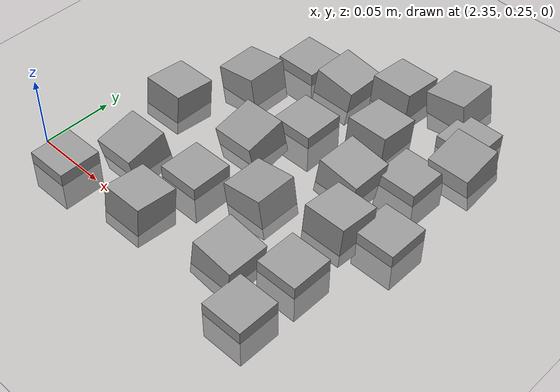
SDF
<sdf version="1.7">
 <world name="default">
  <model name="ground_plane">
   <static>1</static>
   <link name="link">
    <collision name="collision">
     <geometry><plane><normal>0 0 1</normal><size>100 100</size></plane></geometry>
     <surface><friction><ode><mu>100</mu><mu2>50</mu2></ode></friction></surface>
    </collision>
    <visual name="visual">
     <cast_shadows>0</cast_shadows>
     <geometry><plane><normal>0 0 1</normal><size>100 100</size></plane></geometry>
     <material>
      <script><uri>file://media/materials/scripts/gazebo.material</uri><name>Gazebo/Grey</name></script>
     </material>
    </visual>
   </link>
  </model>
  <model name="stone_road_7">
   <link name="link_0">
    <inertial>
     <mass>1</mass>
     <inertia>
      <ixx>0.166667</ixx>
      <ixy>0</ixy>
      <ixz>0</ixz>
      <iyy>0.166667</iyy>
      <iyz>0</iyz>
      <izz>0.166667</izz>
     </inertia>
    </inertial>
    <pose>-0.171827 0.03973 0.003778 0.2 -0 0</pose>
    <kinematic>1</kinematic>
    <visual name="visual">
     <geometry><box><size>0.03 0.03 0.03</size></box></geometry>
     <material>
      <lighting>1</lighting>
      <script><uri>file://media/materials/scripts/gazebo.material</uri><name>Gazebo/Grey</name></script>
      <shader type="pixel"><normal_map>__default__</normal_map></shader>
      <ambient>0.3 0.3 0.3 1</ambient>
      <diffuse>0.7 0.7 0.7 1</diffuse>
      <specular>0.01 0.01 0.01 1</specular>
      <emissive>0 0 0 1</emissive>
     </material>
    </visual>
    <collision name="collision">
     <geometry><box><size>0.03 0.03 0.03</size></box></geometry>
     <surface>
      <friction>
       <ode><mu>1</mu><mu2>1</mu2><fdir1>0 0 0</fdir1><slip1>0</slip1><slip2>0</slip2></ode>
       <torsional>
        <coefficient>1</coefficient>
        <patch_radius>0</patch_radius>
        <surface_radius>0</surface_radius>
        <use_patch_radius>1</use_patch_radius>
        <ode><slip>0</slip></ode>
       </torsional>
      </friction>
      <bounce><restitution_coefficient>0</restitution_coefficient><threshold>1e+06</threshold></bounce>
      <contact>
       <collide_without_contact>0</collide_without_contact>
       <collide_without_contact_bitmask>1</collide_without_contact_bitmask>
       <collide_bitmask>1</collide_bitmask>
       <ode>
        <soft_cfm>0</soft_cfm>
        <soft_erp>0.2</soft_erp>
        <kp>1e+13</kp>
        <kd>1</kd>
        <max_vel>0.01</max_vel>
        <min_depth>0</min_depth>
       </ode>
       <bullet>
        <split_impulse>1</split_impulse>
        <split_impulse_penetration_threshold>-0.01</split_impulse_penetration_threshold>
        <soft_cfm>0</soft_cfm>
        <soft_erp>0.2</soft_erp>
        <kp>1e+13</kp>
        <kd>1</kd>
       </bullet>
      </contact>
     </surface>
    </collision>
   </link>
   <link name="link_0_clone_10">
    <inertial>
     <mass>1</mass>
     <inertia>
      <ixx>0.166667</ixx>
      <ixy>0</ixy>
      <ixz>0</ixz>
      <iyy>0.166667</iyy>
      <iyz>0</iyz>
      <izz>0.166667</izz>
     </inertia>
    </inertial>
    <pose>-0.01295 0.17123 0.003778 0.2 -0 0</pose>
    <kinematic>1</kinematic>
    <visual name="visual">
     <geometry><box><size>0.03 0.03 0.03</size></box></geometry>
     <material>
      <lighting>1</lighting>
      <script><uri>file://media/materials/scripts/gazebo.material</uri><name>Gazebo/Grey</name></script>
      <shader type="pixel"><normal_map>__default__</normal_map></shader>
      <ambient>0.3 0.3 0.3 1</ambient>
      <diffuse>0.7 0.7 0.7 1</diffuse>
      <specular>0.01 0.01 0.01 1</specular>
      <emissive>0 0 0 1</emissive>
     </material>
    </visual>
    <collision name="collision">
     <geometry><box><size>0.03 0.03 0.03</size></box></geometry>
     <surface>
      <friction>
       <ode><mu>1</mu><mu2>1</mu2><fdir1>0 0 0</fdir1><slip1>0</slip1><slip2>0</slip2></ode>
       <torsional>
        <coefficient>1</coefficient>
        <patch_radius>0</patch_radius>
        <surface_radius>0</surface_radius>
        <use_patch_radius>1</use_patch_radius>
        <ode><slip>0</slip></ode>
       </torsional>
      </friction>
      <bounce><restitution_coefficient>0</restitution_coefficient><threshold>1e+06</threshold></bounce>
      <contact>
       <collide_without_contact>0</collide_without_contact>
       <collide_without_contact_bitmask>1</collide_without_contact_bitmask>
       <collide_bitmask>1</collide_bitmask>
       <ode>
        <soft_cfm>0</soft_cfm>
        <soft_erp>0.2</soft_erp>
        <kp>1e+13</kp>
        <kd>1</kd>
        <max_vel>0.01</max_vel>
        <min_depth>0</min_depth>
       </ode>
       <bullet>
        <split_impulse>1</split_impulse>
        <split_impulse_penetration_threshold>-0.01</split_impulse_penetration_threshold>
        <soft_cfm>0</soft_cfm>
        <soft_erp>0.2</soft_erp>
        <kp>1e+13</kp>
        <kd>1</kd>
       </bullet>
      </contact>
     </surface>
    </collision>
   </link>
   <link name="link_0_clone_2">
    <inertial>
     <mass>1</mass>
     <inertia>
      <ixx>0.166667</ixx>
      <ixy>0</ixy>
      <ixz>0</ixz>
      <iyy>0.166667</iyy>
      <iyz>0</iyz>
      <izz>0.166667</izz>
     </inertia>
    </inertial>
    <pose>-0.065685 0.018139 0.003778 0 0.15 0</pose>
    <kinematic>1</kinematic>
    <visual name="visual">
     <geometry><box><size>0.03 0.03 0.03</size></box></geometry>
     <material>
      <lighting>1</lighting>
      <script><uri>file://media/materials/scripts/gazebo.material</uri><name>Gazebo/Grey</name></script>
      <shader type="pixel"><normal_map>__default__</normal_map></shader>
      <ambient>0.3 0.3 0.3 1</ambient>
      <diffuse>0.7 0.7 0.7 1</diffuse>
      <specular>0.01 0.01 0.01 1</specular>
      <emissive>0 0 0 1</emissive>
     </material>
    </visual>
    <collision name="collision">
     <geometry><box><size>0.03 0.03 0.03</size></box></geometry>
     <surface>
      <friction>
       <ode><mu>1</mu><mu2>1</mu2><fdir1>0 0 0</fdir1><slip1>0</slip1><slip2>0</slip2></ode>
       <torsional>
        <coefficient>1</coefficient>
        <patch_radius>0</patch_radius>
        <surface_radius>0</surface_radius>
        <use_patch_radius>1</use_patch_radius>
        <ode><slip>0</slip></ode>
       </torsional>
      </friction>
      <bounce><restitution_coefficient>0</restitution_coefficient><threshold>1e+06</threshold></bounce>
      <contact>
       <collide_without_contact>0</collide_without_contact>
       <collide_without_contact_bitmask>1</collide_without_contact_bitmask>
       <collide_bitmask>1</collide_bitmask>
       <ode>
        <soft_cfm>0</soft_cfm>
        <soft_erp>0.2</soft_erp>
        <kp>1e+13</kp>
        <kd>1</kd>
        <max_vel>0.01</max_vel>
        <min_depth>0</min_depth>
       </ode>
       <bullet>
        <split_impulse>1</split_impulse>
        <split_impulse_penetration_threshold>-0.01</split_impulse_penetration_threshold>
        <soft_cfm>0</soft_cfm>
        <soft_erp>0.2</soft_erp>
        <kp>1e+13</kp>
        <kd>1</kd>
       </bullet>
      </contact>
     </surface>
    </collision>
   </link>
   <link name="link_0_clone_2_clone_2_clone_1">
    <inertial>
     <mass>1</mass>
     <inertia>
      <ixx>0.166667</ixx>
      <ixy>0</ixy>
      <ixz>0</ixz>
      <iyy>0.166667</iyy>
      <iyz>0</iyz>
      <izz>0.166667</izz>
     </inertia>
    </inertial>
    <pose>-0.085624 0.065625 0.003778 0 -0.15 0</pose>
    <kinematic>1</kinematic>
    <visual name="visual">
     <geometry><box><size>0.03 0.03 0.03</size></box></geometry>
     <material>
      <lighting>1</lighting>
      <script><uri>file://media/materials/scripts/gazebo.material</uri><name>Gazebo/Grey</name></script>
      <shader type="pixel"><normal_map>__default__</normal_map></shader>
      <ambient>0.3 0.3 0.3 1</ambient>
      <diffuse>0.7 0.7 0.7 1</diffuse>
      <specular>0.01 0.01 0.01 1</specular>
      <emissive>0 0 0 1</emissive>
     </material>
    </visual>
    <collision name="collision">
     <geometry><box><size>0.03 0.03 0.03</size></box></geometry>
     <surface>
      <friction>
       <ode><mu>1</mu><mu2>1</mu2><fdir1>0 0 0</fdir1><slip1>0</slip1><slip2>0</slip2></ode>
       <torsional>
        <coefficient>1</coefficient>
        <patch_radius>0</patch_radius>
        <surface_radius>0</surface_radius>
        <use_patch_radius>1</use_patch_radius>
        <ode><slip>0</slip></ode>
       </torsional>
      </friction>
      <bounce><restitution_coefficient>0</restitution_coefficient><threshold>1e+06</threshold></bounce>
      <contact>
       <collide_without_contact>0</collide_without_contact>
       <collide_without_contact_bitmask>1</collide_without_contact_bitmask>
       <collide_bitmask>1</collide_bitmask>
       <ode>
        <soft_cfm>0</soft_cfm>
        <soft_erp>0.2</soft_erp>
        <kp>1e+13</kp>
        <kd>1</kd>
        <max_vel>0.01</max_vel>
        <min_depth>0</min_depth>
       </ode>
       <bullet>
        <split_impulse>1</split_impulse>
        <split_impulse_penetration_threshold>-0.01</split_impulse_penetration_threshold>
        <soft_cfm>0</soft_cfm>
        <soft_erp>0.2</soft_erp>
        <kp>1e+13</kp>
        <kd>1</kd>
       </bullet>
      </contact>
     </surface>
    </collision>
   </link>
   <link name="link_0_clone_2_clone_2_clone_11">
    <inertial>
     <mass>1</mass>
     <inertia>
      <ixx>0.166667</ixx>
      <ixy>0</ixy>
      <ixz>0</ixz>
      <iyy>0.166667</iyy>
      <iyz>0</iyz>
      <izz>0.166667</izz>
     </inertia>
    </inertial>
    <pose>-0.050382 0.216558 0.003778 0 -0.15 0</pose>
    <kinematic>1</kinematic>
    <visual name="visual">
     <geometry><box><size>0.03 0.03 0.03</size></box></geometry>
     <material>
      <lighting>1</lighting>
      <script><uri>file://media/materials/scripts/gazebo.material</uri><name>Gazebo/Grey</name></script>
      <shader type="pixel"><normal_map>__default__</normal_map></shader>
      <ambient>0.3 0.3 0.3 1</ambient>
      <diffuse>0.7 0.7 0.7 1</diffuse>
      <specular>0.01 0.01 0.01 1</specular>
      <emissive>0 0 0 1</emissive>
     </material>
    </visual>
    <collision name="collision">
     <geometry><box><size>0.03 0.03 0.03</size></box></geometry>
     <surface>
      <friction>
       <ode><mu>1</mu><mu2>1</mu2><fdir1>0 0 0</fdir1><slip1>0</slip1><slip2>0</slip2></ode>
       <torsional>
        <coefficient>1</coefficient>
        <patch_radius>0</patch_radius>
        <surface_radius>0</surface_radius>
        <use_patch_radius>1</use_patch_radius>
        <ode><slip>0</slip></ode>
       </torsional>
      </friction>
      <bounce><restitution_coefficient>0</restitution_coefficient><threshold>1e+06</threshold></bounce>
      <contact>
       <collide_without_contact>0</collide_without_contact>
       <collide_without_contact_bitmask>1</collide_without_contact_bitmask>
       <collide_bitmask>1</collide_bitmask>
       <ode>
        <soft_cfm>0</soft_cfm>
        <soft_erp>0.2</soft_erp>
        <kp>1e+13</kp>
        <kd>1</kd>
        <max_vel>0.01</max_vel>
        <min_depth>0</min_depth>
       </ode>
       <bullet>
        <split_impulse>1</split_impulse>
        <split_impulse_penetration_threshold>-0.01</split_impulse_penetration_threshold>
        <soft_cfm>0</soft_cfm>
        <soft_erp>0.2</soft_erp>
        <kp>1e+13</kp>
        <kd>1</kd>
       </bullet>
      </contact>
     </surface>
    </collision>
   </link>
   <link name="link_0_clone_2_clone_2_clone_13_clone_clone_13">
    <inertial>
     <mass>1</mass>
     <inertia>
      <ixx>0.166667</ixx>
      <ixy>0</ixy>
      <ixz>0</ixz>
      <iyy>0.166667</iyy>
      <iyz>0</iyz>
      <izz>0.166667</izz>
     </inertia>
    </inertial>
    <pose>-0.069861 0.157394 0.003778 -0.1 0 0</pose>
    <kinematic>1</kinematic>
    <visual name="visual">
     <geometry><box><size>0.03 0.03 0.03</size></box></geometry>
     <material>
      <lighting>1</lighting>
      <script><uri>file://media/materials/scripts/gazebo.material</uri><name>Gazebo/Grey</name></script>
      <shader type="pixel"><normal_map>__default__</normal_map></shader>
      <ambient>0.3 0.3 0.3 1</ambient>
      <diffuse>0.7 0.7 0.7 1</diffuse>
      <specular>0.01 0.01 0.01 1</specular>
      <emissive>0 0 0 1</emissive>
     </material>
    </visual>
    <collision name="collision">
     <geometry><box><size>0.03 0.03 0.03</size></box></geometry>
     <surface>
      <friction>
       <ode><mu>1</mu><mu2>1</mu2><fdir1>0 0 0</fdir1><slip1>0</slip1><slip2>0</slip2></ode>
       <torsional>
        <coefficient>1</coefficient>
        <patch_radius>0</patch_radius>
        <surface_radius>0</surface_radius>
        <use_patch_radius>1</use_patch_radius>
        <ode><slip>0</slip></ode>
       </torsional>
      </friction>
      <bounce><restitution_coefficient>0</restitution_coefficient><threshold>1e+06</threshold></bounce>
      <contact>
       <collide_without_contact>0</collide_without_contact>
       <collide_without_contact_bitmask>1</collide_without_contact_bitmask>
       <collide_bitmask>1</collide_bitmask>
       <ode>
        <soft_cfm>0</soft_cfm>
        <soft_erp>0.2</soft_erp>
        <kp>1e+13</kp>
        <kd>1</kd>
        <max_vel>0.01</max_vel>
        <min_depth>0</min_depth>
       </ode>
       <bullet>
        <split_impulse>1</split_impulse>
        <split_impulse_penetration_threshold>-0.01</split_impulse_penetration_threshold>
        <soft_cfm>0</soft_cfm>
        <soft_erp>0.2</soft_erp>
        <kp>1e+13</kp>
        <kd>1</kd>
       </bullet>
      </contact>
     </surface>
    </collision>
   </link>
   <link name="link_0_clone_2_clone_2_clone_13_clone_clone_14">
    <inertial>
     <mass>1</mass>
     <inertia>
      <ixx>0.166667</ixx>
      <ixy>0</ixy>
      <ixz>0</ixz>
      <iyy>0.166667</iyy>
      <iyz>0</iyz>
      <izz>0.166667</izz>
     </inertia>
    </inertial>
    <pose>-0.190578 0.093923 0.003778 -0.1 0 0</pose>
    <kinematic>1</kinematic>
    <visual name="visual">
     <geometry><box><size>0.03 0.03 0.03</size></box></geometry>
     <material>
      <lighting>1</lighting>
      <script><uri>file://media/materials/scripts/gazebo.material</uri><name>Gazebo/Grey</name></script>
      <shader type="pixel"><normal_map>__default__</normal_map></shader>
      <ambient>0.3 0.3 0.3 1</ambient>
      <diffuse>0.7 0.7 0.7 1</diffuse>
      <specular>0.01 0.01 0.01 1</specular>
      <emissive>0 0 0 1</emissive>
     </material>
    </visual>
    <collision name="collision">
     <geometry><box><size>0.03 0.03 0.03</size></box></geometry>
     <surface>
      <friction>
       <ode><mu>1</mu><mu2>1</mu2><fdir1>0 0 0</fdir1><slip1>0</slip1><slip2>0</slip2></ode>
       <torsional>
        <coefficient>1</coefficient>
        <patch_radius>0</patch_radius>
        <surface_radius>0</surface_radius>
        <use_patch_radius>1</use_patch_radius>
        <ode><slip>0</slip></ode>
       </torsional>
      </friction>
      <bounce><restitution_coefficient>0</restitution_coefficient><threshold>1e+06</threshold></bounce>
      <contact>
       <collide_without_contact>0</collide_without_contact>
       <collide_without_contact_bitmask>1</collide_without_contact_bitmask>
       <collide_bitmask>1</collide_bitmask>
       <ode>
        <soft_cfm>0</soft_cfm>
        <soft_erp>0.2</soft_erp>
        <kp>1e+13</kp>
        <kd>1</kd>
        <max_vel>0.01</max_vel>
        <min_depth>0</min_depth>
       </ode>
       <bullet>
        <split_impulse>1</split_impulse>
        <split_impulse_penetration_threshold>-0.01</split_impulse_penetration_threshold>
        <soft_cfm>0</soft_cfm>
        <soft_erp>0.2</soft_erp>
        <kp>1e+13</kp>
        <kd>1</kd>
       </bullet>
      </contact>
     </surface>
    </collision>
   </link>
   <link name="link_0_clone_2_clone_2_clone_13_clone_clone_15">
    <inertial>
     <mass>1</mass>
     <inertia>
      <ixx>0.166667</ixx>
      <ixy>0</ixy>
      <ixz>0</ixz>
      <iyy>0.166667</iyy>
      <iyz>0</iyz>
      <izz>0.166667</izz>
     </inertia>
    </inertial>
    <pose>-0.084893 0.19984 0.003778 -0.1 0 0</pose>
    <kinematic>1</kinematic>
    <visual name="visual">
     <geometry><box><size>0.03 0.03 0.03</size></box></geometry>
     <material>
      <lighting>1</lighting>
      <script><uri>file://media/materials/scripts/gazebo.material</uri><name>Gazebo/Grey</name></script>
      <shader type="pixel"><normal_map>__default__</normal_map></shader>
      <ambient>0.3 0.3 0.3 1</ambient>
      <diffuse>0.7 0.7 0.7 1</diffuse>
      <specular>0.01 0.01 0.01 1</specular>
      <emissive>0 0 0 1</emissive>
     </material>
    </visual>
    <collision name="collision">
     <geometry><box><size>0.03 0.03 0.03</size></box></geometry>
     <surface>
      <friction>
       <ode><mu>1</mu><mu2>1</mu2><fdir1>0 0 0</fdir1><slip1>0</slip1><slip2>0</slip2></ode>
       <torsional>
        <coefficient>1</coefficient>
        <patch_radius>0</patch_radius>
        <surface_radius>0</surface_radius>
        <use_patch_radius>1</use_patch_radius>
        <ode><slip>0</slip></ode>
       </torsional>
      </friction>
      <bounce><restitution_coefficient>0</restitution_coefficient><threshold>1e+06</threshold></bounce>
      <contact>
       <collide_without_contact>0</collide_without_contact>
       <collide_without_contact_bitmask>1</collide_without_contact_bitmask>
       <collide_bitmask>1</collide_bitmask>
       <ode>
        <soft_cfm>0</soft_cfm>
        <soft_erp>0.2</soft_erp>
        <kp>1e+13</kp>
        <kd>1</kd>
        <max_vel>0.01</max_vel>
        <min_depth>0</min_depth>
       </ode>
       <bullet>
        <split_impulse>1</split_impulse>
        <split_impulse_penetration_threshold>-0.01</split_impulse_penetration_threshold>
        <soft_cfm>0</soft_cfm>
        <soft_erp>0.2</soft_erp>
        <kp>1e+13</kp>
        <kd>1</kd>
       </bullet>
      </contact>
     </surface>
    </collision>
   </link>
   <link name="link_0_clone_2_clone_2_clone_13_clone_clone_16_clone_0">
    <inertial>
     <mass>1</mass>
     <inertia>
      <ixx>0.166667</ixx>
      <ixy>0</ixy>
      <ixz>0</ixz>
      <iyy>0.166667</iyy>
      <iyz>0</iyz>
      <izz>0.166667</izz>
     </inertia>
    </inertial>
    <pose>-0.010782 0.09679 -0.006222 0 -0 0</pose>
    <kinematic>1</kinematic>
    <visual name="visual">
     <geometry><box><size>0.03 0.03 0.03</size></box></geometry>
     <material>
      <lighting>1</lighting>
      <script><uri>file://media/materials/scripts/gazebo.material</uri><name>Gazebo/Grey</name></script>
      <shader type="pixel"><normal_map>__default__</normal_map></shader>
      <ambient>0.3 0.3 0.3 1</ambient>
      <diffuse>0.7 0.7 0.7 1</diffuse>
      <specular>0.01 0.01 0.01 1</specular>
      <emissive>0 0 0 1</emissive>
     </material>
    </visual>
    <collision name="collision">
     <geometry><box><size>0.03 0.03 0.03</size></box></geometry>
     <surface>
      <friction>
       <ode><mu>1</mu><mu2>1</mu2><fdir1>0 0 0</fdir1><slip1>0</slip1><slip2>0</slip2></ode>
       <torsional>
        <coefficient>1</coefficient>
        <patch_radius>0</patch_radius>
        <surface_radius>0</surface_radius>
        <use_patch_radius>1</use_patch_radius>
        <ode><slip>0</slip></ode>
       </torsional>
      </friction>
      <bounce><restitution_coefficient>0</restitution_coefficient><threshold>1e+06</threshold></bounce>
      <contact>
       <collide_without_contact>0</collide_without_contact>
       <collide_without_contact_bitmask>1</collide_without_contact_bitmask>
       <collide_bitmask>1</collide_bitmask>
       <ode>
        <soft_cfm>0</soft_cfm>
        <soft_erp>0.2</soft_erp>
        <kp>1e+13</kp>
        <kd>1</kd>
        <max_vel>0.01</max_vel>
        <min_depth>0</min_depth>
       </ode>
       <bullet>
        <split_impulse>1</split_impulse>
        <split_impulse_penetration_threshold>-0.01</split_impulse_penetration_threshold>
        <soft_cfm>0</soft_cfm>
        <soft_erp>0.2</soft_erp>
        <kp>1e+13</kp>
        <kd>1</kd>
       </bullet>
      </contact>
     </surface>
    </collision>
   </link>
   <link name="link_0_clone_2_clone_2_clone_13_clone_clone_16_clone_2">
    <inertial>
     <mass>1</mass>
     <inertia>
      <ixx>0.166667</ixx>
      <ixy>0</ixy>
      <ixz>0</ixz>
      <iyy>0.166667</iyy>
      <iyz>0</iyz>
      <izz>0.166667</izz>
     </inertia>
    </inertial>
    <pose>-0.035128 0.040728 -0.006222 0 -0 0</pose>
    <kinematic>1</kinematic>
    <visual name="visual">
     <geometry><box><size>0.03 0.03 0.03</size></box></geometry>
     <material>
      <lighting>1</lighting>
      <script><uri>file://media/materials/scripts/gazebo.material</uri><name>Gazebo/Grey</name></script>
      <shader type="pixel"><normal_map>__default__</normal_map></shader>
      <ambient>0.3 0.3 0.3 1</ambient>
      <diffuse>0.7 0.7 0.7 1</diffuse>
      <specular>0.01 0.01 0.01 1</specular>
      <emissive>0 0 0 1</emissive>
     </material>
    </visual>
    <collision name="collision">
     <geometry><box><size>0.03 0.03 0.03</size></box></geometry>
     <surface>
      <friction>
       <ode><mu>1</mu><mu2>1</mu2><fdir1>0 0 0</fdir1><slip1>0</slip1><slip2>0</slip2></ode>
       <torsional>
        <coefficient>1</coefficient>
        <patch_radius>0</patch_radius>
        <surface_radius>0</surface_radius>
        <use_patch_radius>1</use_patch_radius>
        <ode><slip>0</slip></ode>
       </torsional>
      </friction>
      <bounce><restitution_coefficient>0</restitution_coefficient><threshold>1e+06</threshold></bounce>
      <contact>
       <collide_without_contact>0</collide_without_contact>
       <collide_without_contact_bitmask>1</collide_without_contact_bitmask>
       <collide_bitmask>1</collide_bitmask>
       <ode>
        <soft_cfm>0</soft_cfm>
        <soft_erp>0.2</soft_erp>
        <kp>1e+13</kp>
        <kd>1</kd>
        <max_vel>0.01</max_vel>
        <min_depth>0</min_depth>
       </ode>
       <bullet>
        <split_impulse>1</split_impulse>
        <split_impulse_penetration_threshold>-0.01</split_impulse_penetration_threshold>
        <soft_cfm>0</soft_cfm>
        <soft_erp>0.2</soft_erp>
        <kp>1e+13</kp>
        <kd>1</kd>
       </bullet>
      </contact>
     </surface>
    </collision>
   </link>
   <link name="link_0_clone_2_clone_2_clone_13_clone_clone_16_clone_21">
    <inertial>
     <mass>1</mass>
     <inertia>
      <ixx>0.166667</ixx>
      <ixy>0</ixy>
      <ixz>0</ixz>
      <iyy>0.166667</iyy>
      <iyz>0</iyz>
      <izz>0.166667</izz>
     </inertia>
    </inertial>
    <pose>-0.032398 0.142589 -0.006222 0 -0 0</pose>
    <kinematic>1</kinematic>
    <visual name="visual">
     <geometry><box><size>0.03 0.03 0.03</size></box></geometry>
     <material>
      <lighting>1</lighting>
      <script><uri>file://media/materials/scripts/gazebo.material</uri><name>Gazebo/Grey</name></script>
      <shader type="pixel"><normal_map>__default__</normal_map></shader>
      <ambient>0.3 0.3 0.3 1</ambient>
      <diffuse>0.7 0.7 0.7 1</diffuse>
      <specular>0.01 0.01 0.01 1</specular>
      <emissive>0 0 0 1</emissive>
     </material>
    </visual>
    <collision name="collision">
     <geometry><box><size>0.03 0.03 0.03</size></box></geometry>
     <surface>
      <friction>
       <ode><mu>1</mu><mu2>1</mu2><fdir1>0 0 0</fdir1><slip1>0</slip1><slip2>0</slip2></ode>
       <torsional>
        <coefficient>1</coefficient>
        <patch_radius>0</patch_radius>
        <surface_radius>0</surface_radius>
        <use_patch_radius>1</use_patch_radius>
        <ode><slip>0</slip></ode>
       </torsional>
      </friction>
      <bounce><restitution_coefficient>0</restitution_coefficient><threshold>1e+06</threshold></bounce>
      <contact>
       <collide_without_contact>0</collide_without_contact>
       <collide_without_contact_bitmask>1</collide_without_contact_bitmask>
       <collide_bitmask>1</collide_bitmask>
       <ode>
        <soft_cfm>0</soft_cfm>
        <soft_erp>0.2</soft_erp>
        <kp>1e+13</kp>
        <kd>1</kd>
        <max_vel>0.01</max_vel>
        <min_depth>0</min_depth>
       </ode>
       <bullet>
        <split_impulse>1</split_impulse>
        <split_impulse_penetration_threshold>-0.01</split_impulse_penetration_threshold>
        <soft_cfm>0</soft_cfm>
        <soft_erp>0.2</soft_erp>
        <kp>1e+13</kp>
        <kd>1</kd>
       </bullet>
      </contact>
     </surface>
    </collision>
   </link>
   <link name="link_0_clone_2_clone_2_clone_13_clone_clone_16_clone_22">
    <inertial>
     <mass>1</mass>
     <inertia>
      <ixx>0.166667</ixx>
      <ixy>0</ixy>
      <ixz>0</ixz>
      <iyy>0.166667</iyy>
      <iyz>0</iyz>
      <izz>0.166667</izz>
     </inertia>
    </inertial>
    <pose>-0.025872 0.194724 -0.006222 0 -0 0</pose>
    <kinematic>1</kinematic>
    <visual name="visual">
     <geometry><box><size>0.03 0.03 0.03</size></box></geometry>
     <material>
      <lighting>1</lighting>
      <script><uri>file://media/materials/scripts/gazebo.material</uri><name>Gazebo/Grey</name></script>
      <shader type="pixel"><normal_map>__default__</normal_map></shader>
      <ambient>0.3 0.3 0.3 1</ambient>
      <diffuse>0.7 0.7 0.7 1</diffuse>
      <specular>0.01 0.01 0.01 1</specular>
      <emissive>0 0 0 1</emissive>
     </material>
    </visual>
    <collision name="collision">
     <geometry><box><size>0.03 0.03 0.03</size></box></geometry>
     <surface>
      <friction>
       <ode><mu>1</mu><mu2>1</mu2><fdir1>0 0 0</fdir1><slip1>0</slip1><slip2>0</slip2></ode>
       <torsional>
        <coefficient>1</coefficient>
        <patch_radius>0</patch_radius>
        <surface_radius>0</surface_radius>
        <use_patch_radius>1</use_patch_radius>
        <ode><slip>0</slip></ode>
       </torsional>
      </friction>
      <bounce><restitution_coefficient>0</restitution_coefficient><threshold>1e+06</threshold></bounce>
      <contact>
       <collide_without_contact>0</collide_without_contact>
       <collide_without_contact_bitmask>1</collide_without_contact_bitmask>
       <collide_bitmask>1</collide_bitmask>
       <ode>
        <soft_cfm>0</soft_cfm>
        <soft_erp>0.2</soft_erp>
        <kp>1e+13</kp>
        <kd>1</kd>
        <max_vel>0.01</max_vel>
        <min_depth>0</min_depth>
       </ode>
       <bullet>
        <split_impulse>1</split_impulse>
        <split_impulse_penetration_threshold>-0.01</split_impulse_penetration_threshold>
        <soft_cfm>0</soft_cfm>
        <soft_erp>0.2</soft_erp>
        <kp>1e+13</kp>
        <kd>1</kd>
       </bullet>
      </contact>
     </surface>
    </collision>
   </link>
   <link name="link_0_clone_2_clone_2_clone_13_clone_clone_16_clone_25">
    <inertial>
     <mass>1</mass>
     <inertia>
      <ixx>0.166667</ixx>
      <ixy>0</ixy>
      <ixz>0</ixz>
      <iyy>0.166667</iyy>
      <iyz>0</iyz>
      <izz>0.166667</izz>
     </inertia>
    </inertial>
    <pose>-0.15326 0.182661 -0.006222 0 -0 0</pose>
    <kinematic>1</kinematic>
    <visual name="visual">
     <geometry><box><size>0.03 0.03 0.03</size></box></geometry>
     <material>
      <lighting>1</lighting>
      <script><uri>file://media/materials/scripts/gazebo.material</uri><name>Gazebo/Grey</name></script>
      <shader type="pixel"><normal_map>__default__</normal_map></shader>
      <ambient>0.3 0.3 0.3 1</ambient>
      <diffuse>0.7 0.7 0.7 1</diffuse>
      <specular>0.01 0.01 0.01 1</specular>
      <emissive>0 0 0 1</emissive>
     </material>
    </visual>
    <collision name="collision">
     <geometry><box><size>0.03 0.03 0.03</size></box></geometry>
     <surface>
      <friction>
       <ode><mu>1</mu><mu2>1</mu2><fdir1>0 0 0</fdir1><slip1>0</slip1><slip2>0</slip2></ode>
       <torsional>
        <coefficient>1</coefficient>
        <patch_radius>0</patch_radius>
        <surface_radius>0</surface_radius>
        <use_patch_radius>1</use_patch_radius>
        <ode><slip>0</slip></ode>
       </torsional>
      </friction>
      <bounce><restitution_coefficient>0</restitution_coefficient><threshold>1e+06</threshold></bounce>
      <contact>
       <collide_without_contact>0</collide_without_contact>
       <collide_without_contact_bitmask>1</collide_without_contact_bitmask>
       <collide_bitmask>1</collide_bitmask>
       <ode>
        <soft_cfm>0</soft_cfm>
        <soft_erp>0.2</soft_erp>
        <kp>1e+13</kp>
        <kd>1</kd>
        <max_vel>0.01</max_vel>
        <min_depth>0</min_depth>
       </ode>
       <bullet>
        <split_impulse>1</split_impulse>
        <split_impulse_penetration_threshold>-0.01</split_impulse_penetration_threshold>
        <soft_cfm>0</soft_cfm>
        <soft_erp>0.2</soft_erp>
        <kp>1e+13</kp>
        <kd>1</kd>
       </bullet>
      </contact>
     </surface>
    </collision>
   </link>
   <link name="link_0_clone_2_clone_2_clone_13_clone_clone_16_clone_26">
    <inertial>
     <mass>1</mass>
     <inertia>
      <ixx>0.166667</ixx>
      <ixy>0</ixy>
      <ixz>0</ixz>
      <iyy>0.166667</iyy>
      <iyz>0</iyz>
      <izz>0.166667</izz>
     </inertia>
    </inertial>
    <pose>-0.035162 -0.002247 -0.006222 0 -0 0</pose>
    <kinematic>1</kinematic>
    <visual name="visual">
     <geometry><box><size>0.03 0.03 0.03</size></box></geometry>
     <material>
      <lighting>1</lighting>
      <script><uri>file://media/materials/scripts/gazebo.material</uri><name>Gazebo/Grey</name></script>
      <shader type="pixel"><normal_map>__default__</normal_map></shader>
      <ambient>0.3 0.3 0.3 1</ambient>
      <diffuse>0.7 0.7 0.7 1</diffuse>
      <specular>0.01 0.01 0.01 1</specular>
      <emissive>0 0 0 1</emissive>
     </material>
    </visual>
    <collision name="collision">
     <geometry><box><size>0.03 0.03 0.03</size></box></geometry>
     <surface>
      <friction>
       <ode><mu>1</mu><mu2>1</mu2><fdir1>0 0 0</fdir1><slip1>0</slip1><slip2>0</slip2></ode>
       <torsional>
        <coefficient>1</coefficient>
        <patch_radius>0</patch_radius>
        <surface_radius>0</surface_radius>
        <use_patch_radius>1</use_patch_radius>
        <ode><slip>0</slip></ode>
       </torsional>
      </friction>
      <bounce><restitution_coefficient>0</restitution_coefficient><threshold>1e+06</threshold></bounce>
      <contact>
       <collide_without_contact>0</collide_without_contact>
       <collide_without_contact_bitmask>1</collide_without_contact_bitmask>
       <collide_bitmask>1</collide_bitmask>
       <ode>
        <soft_cfm>0</soft_cfm>
        <soft_erp>0.2</soft_erp>
        <kp>1e+13</kp>
        <kd>1</kd>
        <max_vel>0.01</max_vel>
        <min_depth>0</min_depth>
       </ode>
       <bullet>
        <split_impulse>1</split_impulse>
        <split_impulse_penetration_threshold>-0.01</split_impulse_penetration_threshold>
        <soft_cfm>0</soft_cfm>
        <soft_erp>0.2</soft_erp>
        <kp>1e+13</kp>
        <kd>1</kd>
       </bullet>
      </contact>
     </surface>
    </collision>
   </link>
   <link name="link_0_clone_2_clone_2_clone_13_clone_clone_16_clone_3">
    <inertial>
     <mass>1</mass>
     <inertia>
      <ixx>0.166667</ixx>
      <ixy>0</ixy>
      <ixz>0</ixz>
      <iyy>0.166667</iyy>
      <iyz>0</iyz>
      <izz>0.166667</izz>
     </inertia>
    </inertial>
    <pose>-0.112739 0.135576 -0.006222 0 -0 0</pose>
    <kinematic>1</kinematic>
    <visual name="visual">
     <geometry><box><size>0.03 0.03 0.03</size></box></geometry>
     <material>
      <lighting>1</lighting>
      <script><uri>file://media/materials/scripts/gazebo.material</uri><name>Gazebo/Grey</name></script>
      <shader type="pixel"><normal_map>__default__</normal_map></shader>
      <ambient>0.3 0.3 0.3 1</ambient>
      <diffuse>0.7 0.7 0.7 1</diffuse>
      <specular>0.01 0.01 0.01 1</specular>
      <emissive>0 0 0 1</emissive>
     </material>
    </visual>
    <collision name="collision">
     <geometry><box><size>0.03 0.03 0.03</size></box></geometry>
     <surface>
      <friction>
       <ode><mu>1</mu><mu2>1</mu2><fdir1>0 0 0</fdir1><slip1>0</slip1><slip2>0</slip2></ode>
       <torsional>
        <coefficient>1</coefficient>
        <patch_radius>0</patch_radius>
        <surface_radius>0</surface_radius>
        <use_patch_radius>1</use_patch_radius>
        <ode><slip>0</slip></ode>
       </torsional>
      </friction>
      <bounce><restitution_coefficient>0</restitution_coefficient><threshold>1e+06</threshold></bounce>
      <contact>
       <collide_without_contact>0</collide_without_contact>
       <collide_without_contact_bitmask>1</collide_without_contact_bitmask>
       <collide_bitmask>1</collide_bitmask>
       <ode>
        <soft_cfm>0</soft_cfm>
        <soft_erp>0.2</soft_erp>
        <kp>1e+13</kp>
        <kd>1</kd>
        <max_vel>0.01</max_vel>
        <min_depth>0</min_depth>
       </ode>
       <bullet>
        <split_impulse>1</split_impulse>
        <split_impulse_penetration_threshold>-0.01</split_impulse_penetration_threshold>
        <soft_cfm>0</soft_cfm>
        <soft_erp>0.2</soft_erp>
        <kp>1e+13</kp>
        <kd>1</kd>
       </bullet>
      </contact>
     </surface>
    </collision>
   </link>
   <link name="link_0_clone_2_clone_2_clone_13_clone_clone_16_clone_31">
    <inertial>
     <mass>1</mass>
     <inertia>
      <ixx>0.166667</ixx>
      <ixy>0</ixy>
      <ixz>0</ixz>
      <iyy>0.166667</iyy>
      <iyz>0</iyz>
      <izz>0.166667</izz>
     </inertia>
    </inertial>
    <pose>-0.198811 0.004584 -0.006222 0 -0 0</pose>
    <kinematic>1</kinematic>
    <visual name="visual">
     <geometry><box><size>0.03 0.03 0.03</size></box></geometry>
     <material>
      <lighting>1</lighting>
      <script><uri>file://media/materials/scripts/gazebo.material</uri><name>Gazebo/Grey</name></script>
      <shader type="pixel"><normal_map>__default__</normal_map></shader>
      <ambient>0.3 0.3 0.3 1</ambient>
      <diffuse>0.7 0.7 0.7 1</diffuse>
      <specular>0.01 0.01 0.01 1</specular>
      <emissive>0 0 0 1</emissive>
     </material>
    </visual>
    <collision name="collision">
     <geometry><box><size>0.03 0.03 0.03</size></box></geometry>
     <surface>
      <friction>
       <ode><mu>1</mu><mu2>1</mu2><fdir1>0 0 0</fdir1><slip1>0</slip1><slip2>0</slip2></ode>
       <torsional>
        <coefficient>1</coefficient>
        <patch_radius>0</patch_radius>
        <surface_radius>0</surface_radius>
        <use_patch_radius>1</use_patch_radius>
        <ode><slip>0</slip></ode>
       </torsional>
      </friction>
      <bounce><restitution_coefficient>0</restitution_coefficient><threshold>1e+06</threshold></bounce>
      <contact>
       <collide_without_contact>0</collide_without_contact>
       <collide_without_contact_bitmask>1</collide_without_contact_bitmask>
       <collide_bitmask>1</collide_bitmask>
       <ode>
        <soft_cfm>0</soft_cfm>
        <soft_erp>0.2</soft_erp>
        <kp>1e+13</kp>
        <kd>1</kd>
        <max_vel>0.01</max_vel>
        <min_depth>0</min_depth>
       </ode>
       <bullet>
        <split_impulse>1</split_impulse>
        <split_impulse_penetration_threshold>-0.01</split_impulse_penetration_threshold>
        <soft_cfm>0</soft_cfm>
        <soft_erp>0.2</soft_erp>
        <kp>1e+13</kp>
        <kd>1</kd>
       </bullet>
      </contact>
     </surface>
    </collision>
   </link>
   <link name="link_0_clone_2_clone_2_clone_13_clone_clone_16_clone_4">
    <inertial>
     <mass>1</mass>
     <inertia>
      <ixx>0.166667</ixx>
      <ixy>0</ixy>
      <ixz>0</ixz>
      <iyy>0.166667</iyy>
      <iyz>0</iyz>
      <izz>0.166667</izz>
     </inertia>
    </inertial>
    <pose>-0.131411 0.053677 -0.006222 0 -0 0</pose>
    <kinematic>1</kinematic>
    <visual name="visual">
     <geometry><box><size>0.03 0.03 0.03</size></box></geometry>
     <material>
      <lighting>1</lighting>
      <script><uri>file://media/materials/scripts/gazebo.material</uri><name>Gazebo/Grey</name></script>
      <shader type="pixel"><normal_map>__default__</normal_map></shader>
      <ambient>0.3 0.3 0.3 1</ambient>
      <diffuse>0.7 0.7 0.7 1</diffuse>
      <specular>0.01 0.01 0.01 1</specular>
      <emissive>0 0 0 1</emissive>
     </material>
    </visual>
    <collision name="collision">
     <geometry><box><size>0.03 0.03 0.03</size></box></geometry>
     <surface>
      <friction>
       <ode><mu>1</mu><mu2>1</mu2><fdir1>0 0 0</fdir1><slip1>0</slip1><slip2>0</slip2></ode>
       <torsional>
        <coefficient>1</coefficient>
        <patch_radius>0</patch_radius>
        <surface_radius>0</surface_radius>
        <use_patch_radius>1</use_patch_radius>
        <ode><slip>0</slip></ode>
       </torsional>
      </friction>
      <bounce><restitution_coefficient>0</restitution_coefficient><threshold>1e+06</threshold></bounce>
      <contact>
       <collide_without_contact>0</collide_without_contact>
       <collide_without_contact_bitmask>1</collide_without_contact_bitmask>
       <collide_bitmask>1</collide_bitmask>
       <ode>
        <soft_cfm>0</soft_cfm>
        <soft_erp>0.2</soft_erp>
        <kp>1e+13</kp>
        <kd>1</kd>
        <max_vel>0.01</max_vel>
        <min_depth>0</min_depth>
       </ode>
       <bullet>
        <split_impulse>1</split_impulse>
        <split_impulse_penetration_threshold>-0.01</split_impulse_penetration_threshold>
        <soft_cfm>0</soft_cfm>
        <soft_erp>0.2</soft_erp>
        <kp>1e+13</kp>
        <kd>1</kd>
       </bullet>
      </contact>
     </surface>
    </collision>
   </link>
   <link name="link_0_clone_2_clone_2_clone_13_clone_clone_2">
    <inertial>
     <mass>1</mass>
     <inertia>
      <ixx>0.166667</ixx>
      <ixy>0</ixy>
      <ixz>0</ixz>
      <iyy>0.166667</iyy>
      <iyz>0</iyz>
      <izz>0.166667</izz>
     </inertia>
    </inertial>
    <pose>-0.037997 0.082571 0.003778 -0.1 0 0</pose>
    <kinematic>1</kinematic>
    <visual name="visual">
     <geometry><box><size>0.03 0.03 0.03</size></box></geometry>
     <material>
      <lighting>1</lighting>
      <script><uri>file://media/materials/scripts/gazebo.material</uri><name>Gazebo/Grey</name></script>
      <shader type="pixel"><normal_map>__default__</normal_map></shader>
      <ambient>0.3 0.3 0.3 1</ambient>
      <diffuse>0.7 0.7 0.7 1</diffuse>
      <specular>0.01 0.01 0.01 1</specular>
      <emissive>0 0 0 1</emissive>
     </material>
    </visual>
    <collision name="collision">
     <geometry><box><size>0.03 0.03 0.03</size></box></geometry>
     <surface>
      <friction>
       <ode><mu>1</mu><mu2>1</mu2><fdir1>0 0 0</fdir1><slip1>0</slip1><slip2>0</slip2></ode>
       <torsional>
        <coefficient>1</coefficient>
        <patch_radius>0</patch_radius>
        <surface_radius>0</surface_radius>
        <use_patch_radius>1</use_patch_radius>
        <ode><slip>0</slip></ode>
       </torsional>
      </friction>
      <bounce><restitution_coefficient>0</restitution_coefficient><threshold>1e+06</threshold></bounce>
      <contact>
       <collide_without_contact>0</collide_without_contact>
       <collide_without_contact_bitmask>1</collide_without_contact_bitmask>
       <collide_bitmask>1</collide_bitmask>
       <ode>
        <soft_cfm>0</soft_cfm>
        <soft_erp>0.2</soft_erp>
        <kp>1e+13</kp>
        <kd>1</kd>
        <max_vel>0.01</max_vel>
        <min_depth>0</min_depth>
       </ode>
       <bullet>
        <split_impulse>1</split_impulse>
        <split_impulse_penetration_threshold>-0.01</split_impulse_penetration_threshold>
        <soft_cfm>0</soft_cfm>
        <soft_erp>0.2</soft_erp>
        <kp>1e+13</kp>
        <kd>1</kd>
       </bullet>
      </contact>
     </surface>
    </collision>
   </link>
   <link name="link_0_clone_2_clone_2_clone_13_clone_clone_7">
    <inertial>
     <mass>1</mass>
     <inertia>
      <ixx>0.166667</ixx>
      <ixy>0</ixy>
      <ixz>0</ixz>
      <iyy>0.166667</iyy>
      <iyz>0</iyz>
      <izz>0.166667</izz>
     </inertia>
    </inertial>
    <pose>-0.133876 0.010561 0.003778 -0.1 0 0</pose>
    <kinematic>1</kinematic>
    <visual name="visual">
     <geometry><box><size>0.03 0.03 0.03</size></box></geometry>
     <material>
      <lighting>1</lighting>
      <script><uri>file://media/materials/scripts/gazebo.material</uri><name>Gazebo/Grey</name></script>
      <shader type="pixel"><normal_map>__default__</normal_map></shader>
      <ambient>0.3 0.3 0.3 1</ambient>
      <diffuse>0.7 0.7 0.7 1</diffuse>
      <specular>0.01 0.01 0.01 1</specular>
      <emissive>0 0 0 1</emissive>
     </material>
    </visual>
    <collision name="collision">
     <geometry><box><size>0.03 0.03 0.03</size></box></geometry>
     <surface>
      <friction>
       <ode><mu>1</mu><mu2>1</mu2><fdir1>0 0 0</fdir1><slip1>0</slip1><slip2>0</slip2></ode>
       <torsional>
        <coefficient>1</coefficient>
        <patch_radius>0</patch_radius>
        <surface_radius>0</surface_radius>
        <use_patch_radius>1</use_patch_radius>
        <ode><slip>0</slip></ode>
       </torsional>
      </friction>
      <bounce><restitution_coefficient>0</restitution_coefficient><threshold>1e+06</threshold></bounce>
      <contact>
       <collide_without_contact>0</collide_without_contact>
       <collide_without_contact_bitmask>1</collide_without_contact_bitmask>
       <collide_bitmask>1</collide_bitmask>
       <ode>
        <soft_cfm>0</soft_cfm>
        <soft_erp>0.2</soft_erp>
        <kp>1e+13</kp>
        <kd>1</kd>
        <max_vel>0.01</max_vel>
        <min_depth>0</min_depth>
       </ode>
       <bullet>
        <split_impulse>1</split_impulse>
        <split_impulse_penetration_threshold>-0.01</split_impulse_penetration_threshold>
        <soft_cfm>0</soft_cfm>
        <soft_erp>0.2</soft_erp>
        <kp>1e+13</kp>
        <kd>1</kd>
       </bullet>
      </contact>
     </surface>
    </collision>
   </link>
   <link name="link_0_clone_2_clone_2_clone_2">
    <inertial>
     <mass>1</mass>
     <inertia>
      <ixx>0.166667</ixx>
      <ixy>0</ixy>
      <ixz>0</ixz>
      <iyy>0.166667</iyy>
      <iyz>0</iyz>
      <izz>0.166667</izz>
     </inertia>
    </inertial>
    <pose>-0.166079 0.139989 0.003778 0 -0.15 0</pose>
    <kinematic>1</kinematic>
    <visual name="visual">
     <geometry><box><size>0.03 0.03 0.03</size></box></geometry>
     <material>
      <lighting>1</lighting>
      <script><uri>file://media/materials/scripts/gazebo.material</uri><name>Gazebo/Grey</name></script>
      <shader type="pixel"><normal_map>__default__</normal_map></shader>
      <ambient>0.3 0.3 0.3 1</ambient>
      <diffuse>0.7 0.7 0.7 1</diffuse>
      <specular>0.01 0.01 0.01 1</specular>
      <emissive>0 0 0 1</emissive>
     </material>
    </visual>
    <collision name="collision">
     <geometry><box><size>0.03 0.03 0.03</size></box></geometry>
     <surface>
      <friction>
       <ode><mu>1</mu><mu2>1</mu2><fdir1>0 0 0</fdir1><slip1>0</slip1><slip2>0</slip2></ode>
       <torsional>
        <coefficient>1</coefficient>
        <patch_radius>0</patch_radius>
        <surface_radius>0</surface_radius>
        <use_patch_radius>1</use_patch_radius>
        <ode><slip>0</slip></ode>
       </torsional>
      </friction>
      <bounce><restitution_coefficient>0</restitution_coefficient><threshold>1e+06</threshold></bounce>
      <contact>
       <collide_without_contact>0</collide_without_contact>
       <collide_without_contact_bitmask>1</collide_without_contact_bitmask>
       <collide_bitmask>1</collide_bitmask>
       <ode>
        <soft_cfm>0</soft_cfm>
        <soft_erp>0.2</soft_erp>
        <kp>1e+13</kp>
        <kd>1</kd>
        <max_vel>0.01</max_vel>
        <min_depth>0</min_depth>
       </ode>
       <bullet>
        <split_impulse>1</split_impulse>
        <split_impulse_penetration_threshold>-0.01</split_impulse_penetration_threshold>
        <soft_cfm>0</soft_cfm>
        <soft_erp>0.2</soft_erp>
        <kp>1e+13</kp>
        <kd>1</kd>
       </bullet>
      </contact>
     </surface>
    </collision>
   </link>
   <link name="link_0_clone_2_clone_3">
    <inertial>
     <mass>1</mass>
     <inertia>
      <ixx>0.166667</ixx>
      <ixy>0</ixy>
      <ixz>0</ixz>
      <iyy>0.166667</iyy>
      <iyz>0</iyz>
      <izz>0.166667</izz>
     </inertia>
    </inertial>
    <pose>-0.058921 0.117271 0.003778 0 0.15 0</pose>
    <kinematic>1</kinematic>
    <visual name="visual">
     <geometry><box><size>0.03 0.03 0.03</size></box></geometry>
     <material>
      <lighting>1</lighting>
      <script><uri>file://media/materials/scripts/gazebo.material</uri><name>Gazebo/Grey</name></script>
      <shader type="pixel"><normal_map>__default__</normal_map></shader>
      <ambient>0.3 0.3 0.3 1</ambient>
      <diffuse>0.7 0.7 0.7 1</diffuse>
      <specular>0.01 0.01 0.01 1</specular>
      <emissive>0 0 0 1</emissive>
     </material>
    </visual>
    <collision name="collision">
     <geometry><box><size>0.03 0.03 0.03</size></box></geometry>
     <surface>
      <friction>
       <ode><mu>1</mu><mu2>1</mu2><fdir1>0 0 0</fdir1><slip1>0</slip1><slip2>0</slip2></ode>
       <torsional>
        <coefficient>1</coefficient>
        <patch_radius>0</patch_radius>
        <surface_radius>0</surface_radius>
        <use_patch_radius>1</use_patch_radius>
        <ode><slip>0</slip></ode>
       </torsional>
      </friction>
      <bounce><restitution_coefficient>0</restitution_coefficient><threshold>1e+06</threshold></bounce>
      <contact>
       <collide_without_contact>0</collide_without_contact>
       <collide_without_contact_bitmask>1</collide_without_contact_bitmask>
       <collide_bitmask>1</collide_bitmask>
       <ode>
        <soft_cfm>0</soft_cfm>
        <soft_erp>0.2</soft_erp>
        <kp>1e+13</kp>
        <kd>1</kd>
        <max_vel>0.01</max_vel>
        <min_depth>0</min_depth>
       </ode>
       <bullet>
        <split_impulse>1</split_impulse>
        <split_impulse_penetration_threshold>-0.01</split_impulse_penetration_threshold>
        <soft_cfm>0</soft_cfm>
        <soft_erp>0.2</soft_erp>
        <kp>1e+13</kp>
        <kd>1</kd>
       </bullet>
      </contact>
     </surface>
    </collision>
   </link>
   <link name="link_0_clone_2_clone_4">
    <inertial>
     <mass>1</mass>
     <inertia>
      <ixx>0.166667</ixx>
      <ixy>0</ixy>
      <ixz>0</ixz>
      <iyy>0.166667</iyy>
      <iyz>0</iyz>
      <izz>0.166667</izz>
     </inertia>
    </inertial>
    <pose>-0.117313 0.179399 0.003778 0 0.15 0</pose>
    <kinematic>1</kinematic>
    <visual name="visual">
     <geometry><box><size>0.03 0.03 0.03</size></box></geometry>
     <material>
      <lighting>1</lighting>
      <script><uri>file://media/materials/scripts/gazebo.material</uri><name>Gazebo/Grey</name></script>
      <shader type="pixel"><normal_map>__default__</normal_map></shader>
      <ambient>0.3 0.3 0.3 1</ambient>
      <diffuse>0.7 0.7 0.7 1</diffuse>
      <specular>0.01 0.01 0.01 1</specular>
      <emissive>0 0 0 1</emissive>
     </material>
    </visual>
    <collision name="collision">
     <geometry><box><size>0.03 0.03 0.03</size></box></geometry>
     <surface>
      <friction>
       <ode><mu>1</mu><mu2>1</mu2><fdir1>0 0 0</fdir1><slip1>0</slip1><slip2>0</slip2></ode>
       <torsional>
        <coefficient>1</coefficient>
        <patch_radius>0</patch_radius>
        <surface_radius>0</surface_radius>
        <use_patch_radius>1</use_patch_radius>
        <ode><slip>0</slip></ode>
       </torsional>
      </friction>
      <bounce><restitution_coefficient>0</restitution_coefficient><threshold>1e+06</threshold></bounce>
      <contact>
       <collide_without_contact>0</collide_without_contact>
       <collide_without_contact_bitmask>1</collide_without_contact_bitmask>
       <collide_bitmask>1</collide_bitmask>
       <ode>
        <soft_cfm>0</soft_cfm>
        <soft_erp>0.2</soft_erp>
        <kp>1e+13</kp>
        <kd>1</kd>
        <max_vel>0.01</max_vel>
        <min_depth>0</min_depth>
       </ode>
       <bullet>
        <split_impulse>1</split_impulse>
        <split_impulse_penetration_threshold>-0.01</split_impulse_penetration_threshold>
        <soft_cfm>0</soft_cfm>
        <soft_erp>0.2</soft_erp>
        <kp>1e+13</kp>
        <kd>1</kd>
       </bullet>
      </contact>
     </surface>
    </collision>
   </link>
   <link name="link_0_clone_3">
    <inertial>
     <mass>1</mass>
     <inertia>
      <ixx>0.166667</ixx>
      <ixy>0</ixy>
      <ixz>0</ixz>
      <iyy>0.166667</iyy>
      <iyz>0</iyz>
      <izz>0.166667</izz>
     </inertia>
    </inertial>
    <pose>-0.126666 0.098861 0.003778 0.2 -0 0</pose>
    <kinematic>1</kinematic>
    <visual name="visual">
     <geometry><box><size>0.03 0.03 0.03</size></box></geometry>
     <material>
      <lighting>1</lighting>
      <script><uri>file://media/materials/scripts/gazebo.material</uri><name>Gazebo/Grey</name></script>
      <shader type="pixel"><normal_map>__default__</normal_map></shader>
      <ambient>0.3 0.3 0.3 1</ambient>
      <diffuse>0.7 0.7 0.7 1</diffuse>
      <specular>0.01 0.01 0.01 1</specular>
      <emissive>0 0 0 1</emissive>
     </material>
    </visual>
    <collision name="collision">
     <geometry><box><size>0.03 0.03 0.03</size></box></geometry>
     <surface>
      <friction>
       <ode><mu>1</mu><mu2>1</mu2><fdir1>0 0 0</fdir1><slip1>0</slip1><slip2>0</slip2></ode>
       <torsional>
        <coefficient>1</coefficient>
        <patch_radius>0</patch_radius>
        <surface_radius>0</surface_radius>
        <use_patch_radius>1</use_patch_radius>
        <ode><slip>0</slip></ode>
       </torsional>
      </friction>
      <bounce><restitution_coefficient>0</restitution_coefficient><threshold>1e+06</threshold></bounce>
      <contact>
       <collide_without_contact>0</collide_without_contact>
       <collide_without_contact_bitmask>1</collide_without_contact_bitmask>
       <collide_bitmask>1</collide_bitmask>
       <ode>
        <soft_cfm>0</soft_cfm>
        <soft_erp>0.2</soft_erp>
        <kp>1e+13</kp>
        <kd>1</kd>
        <max_vel>0.01</max_vel>
        <min_depth>0</min_depth>
       </ode>
       <bullet>
        <split_impulse>1</split_impulse>
        <split_impulse_penetration_threshold>-0.01</split_impulse_penetration_threshold>
        <soft_cfm>0</soft_cfm>
        <soft_erp>0.2</soft_erp>
        <kp>1e+13</kp>
        <kd>1</kd>
       </bullet>
      </contact>
     </surface>
    </collision>
   </link>
   <static>0</static>
   <pose>2.57282 0.242462 -0 0 -0 0</pose>
  </model>
 </world>
</sdf>
